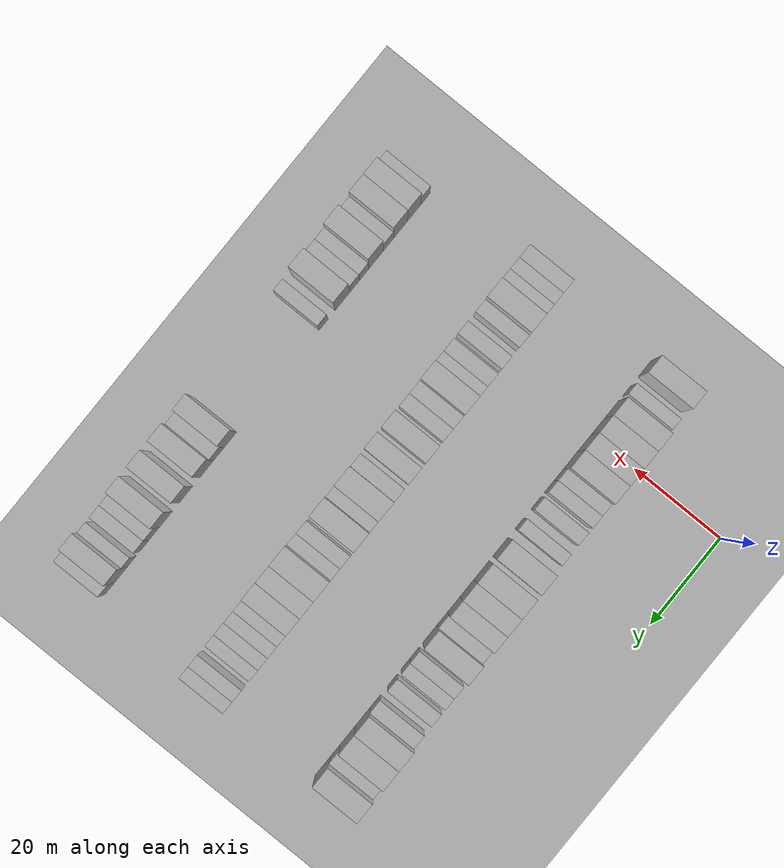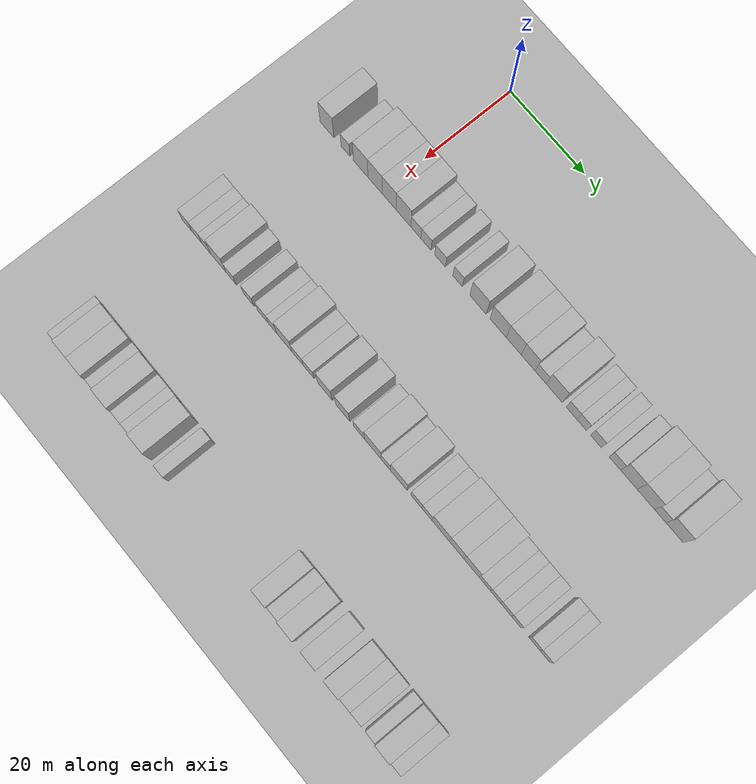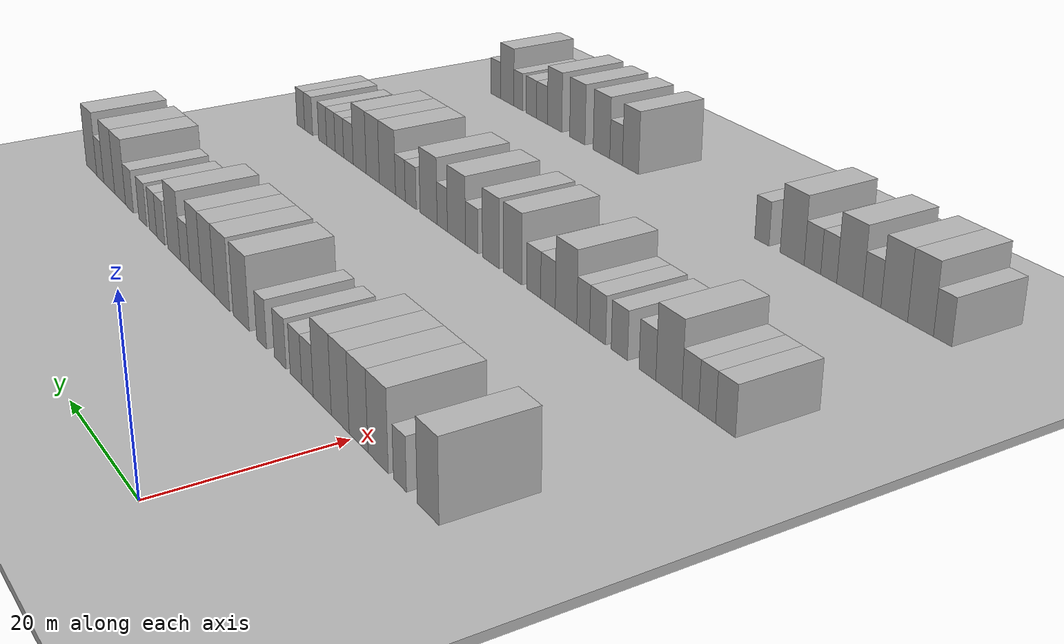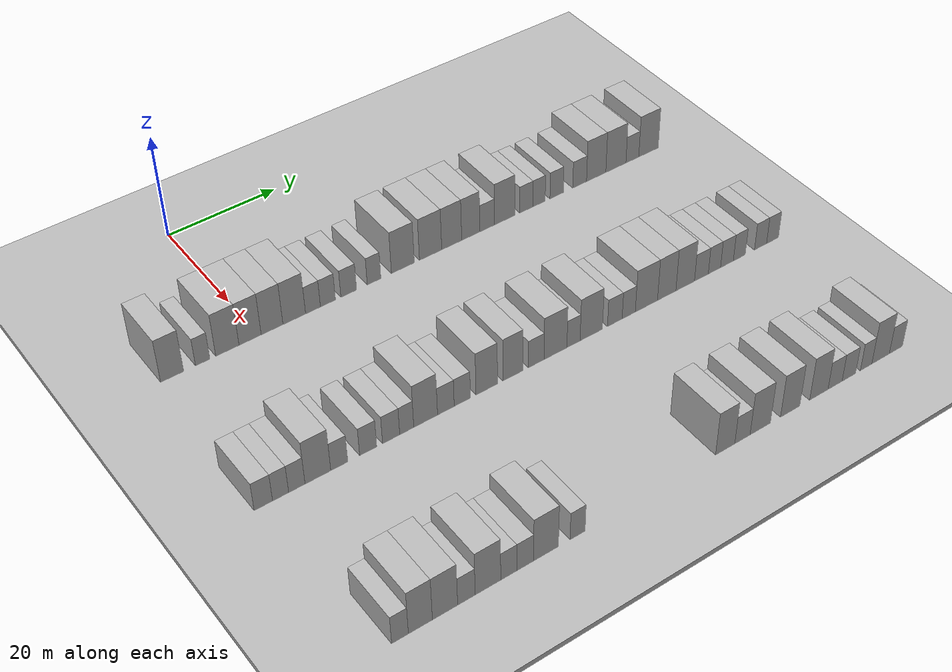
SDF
<sdf version="1.6">
 <world name="default">
  <include><name>ground_plane_1</name><uri>model://HANNAS_ground_plane</uri></include>
  <include>
   <name>ground_plane_2</name>
   <uri>model://HANNAS_ground_plane</uri>
   <pose>100 0 0  0 0 0</pose>
  </include>
  <model name="building_108">
   <static>1</static>
   <pose>25.0000 -15.1009 0 0.000000 0.000000 0.000000</pose>
   <link name="link">
    <pose>0 0 4.50 0 0 0</pose>
    <collision name="collision"><geometry><box><size>10.0000 3.8706 9.0000</size></box></geometry></collision>
    <visual name="visual">
     <cast_shadows>0</cast_shadows>
     <geometry><box><size>10.0000 3.8706 9.0000</size></box></geometry>
     <material>
      <script>
       <uri>model://HANNAS_wall/materials/scripts</uri>
       <uri>model://HANNAS_wall/materials/textures</uri>
       <name>vrc/HANNAS_wall</name>
      </script>
     </material>
    </visual>
   </link>
  </model>
  <model name="building_109">
   <static>1</static>
   <pose>25.0000 -9.9366 0 0.000000 0.000000 0.000000</pose>
   <link name="link">
    <pose>0 0 3.00 0 0 0</pose>
    <collision name="collision"><geometry><box><size>10.0000 2.4580 6.0000</size></box></geometry></collision>
    <visual name="visual">
     <cast_shadows>0</cast_shadows>
     <geometry><box><size>10.0000 2.4580 6.0000</size></box></geometry>
     <material>
      <script>
       <uri>model://HANNAS_wall/materials/scripts</uri>
       <uri>model://HANNAS_wall/materials/textures</uri>
       <name>vrc/HANNAS_wall</name>
      </script>
     </material>
    </visual>
   </link>
  </model>
  <model name="building_110">
   <static>1</static>
   <pose>25.0000 -5.6928 0 0.000000 0.000000 0.000000</pose>
   <link name="link">
    <pose>0 0 4.50 0 0 0</pose>
    <collision name="collision"><geometry><box><size>10.0000 4.0297 9.0000</size></box></geometry></collision>
    <visual name="visual">
     <cast_shadows>0</cast_shadows>
     <geometry><box><size>10.0000 4.0297 9.0000</size></box></geometry>
     <material>
      <script>
       <uri>model://HANNAS_wall/materials/scripts</uri>
       <uri>model://HANNAS_wall/materials/textures</uri>
       <name>vrc/HANNAS_wall</name>
      </script>
     </material>
    </visual>
   </link>
  </model>
  <model name="building_111">
   <static>1</static>
   <pose>25.0000 -1.7312 0 0.000000 0.000000 0.000000</pose>
   <link name="link">
    <pose>0 0 4.50 0 0 0</pose>
    <collision name="collision"><geometry><box><size>10.0000 3.8934 9.0000</size></box></geometry></collision>
    <visual name="visual">
     <cast_shadows>0</cast_shadows>
     <geometry><box><size>10.0000 3.8934 9.0000</size></box></geometry>
     <material>
      <script>
       <uri>model://HANNAS_wall/materials/scripts</uri>
       <uri>model://HANNAS_wall/materials/textures</uri>
       <name>vrc/HANNAS_wall</name>
      </script>
     </material>
    </visual>
   </link>
  </model>
  <model name="building_112">
   <static>1</static>
   <pose>25.0000 2.1440 0 0.000000 0.000000 0.000000</pose>
   <link name="link">
    <pose>0 0 4.50 0 0 0</pose>
    <collision name="collision"><geometry><box><size>10.0000 3.8571 9.0000</size></box></geometry></collision>
    <visual name="visual">
     <cast_shadows>0</cast_shadows>
     <geometry><box><size>10.0000 3.8571 9.0000</size></box></geometry>
     <material>
      <script>
       <uri>model://HANNAS_wall/materials/scripts</uri>
       <uri>model://HANNAS_wall/materials/textures</uri>
       <name>vrc/HANNAS_wall</name>
      </script>
     </material>
    </visual>
   </link>
  </model>
  <model name="building_113">
   <static>1</static>
   <pose>25.0000 6.1071 0 0.000000 0.000000 0.000000</pose>
   <link name="link">
    <pose>0 0 4.50 0 0 0</pose>
    <collision name="collision"><geometry><box><size>10.0000 4.0690 9.0000</size></box></geometry></collision>
    <visual name="visual">
     <cast_shadows>0</cast_shadows>
     <geometry><box><size>10.0000 4.0690 9.0000</size></box></geometry>
     <material>
      <script>
       <uri>model://HANNAS_wall/materials/scripts</uri>
       <uri>model://HANNAS_wall/materials/textures</uri>
       <name>vrc/HANNAS_wall</name>
      </script>
     </material>
    </visual>
   </link>
  </model>
  <model name="building_114">
   <static>1</static>
   <pose>25.0000 9.4922 0 0.000000 0.000000 0.000000</pose>
   <link name="link">
    <pose>0 0 3.00 0 0 0</pose>
    <collision name="collision"><geometry><box><size>10.0000 2.7012 6.0000</size></box></geometry></collision>
    <visual name="visual">
     <cast_shadows>0</cast_shadows>
     <geometry><box><size>10.0000 2.7012 6.0000</size></box></geometry>
     <material>
      <script>
       <uri>model://HANNAS_wall/materials/scripts</uri>
       <uri>model://HANNAS_wall/materials/textures</uri>
       <name>vrc/HANNAS_wall</name>
      </script>
     </material>
    </visual>
   </link>
  </model>
  <model name="building_115">
   <static>1</static>
   <pose>25.0000 12.2214 0 0.000000 0.000000 0.000000</pose>
   <link name="link">
    <pose>0 0 3.00 0 0 0</pose>
    <collision name="collision"><geometry><box><size>10.0000 2.7573 6.0000</size></box></geometry></collision>
    <visual name="visual">
     <cast_shadows>0</cast_shadows>
     <geometry><box><size>10.0000 2.7573 6.0000</size></box></geometry>
     <material>
      <script>
       <uri>model://HANNAS_wall/materials/scripts</uri>
       <uri>model://HANNAS_wall/materials/textures</uri>
       <name>vrc/HANNAS_wall</name>
      </script>
     </material>
    </visual>
   </link>
  </model>
  <model name="building_116">
   <static>1</static>
   <pose>25.0000 16.0547 0 0.000000 0.000000 0.000000</pose>
   <link name="link">
    <pose>0 0 3.00 0 0 0</pose>
    <collision name="collision"><geometry><box><size>10.0000 2.9092 6.0000</size></box></geometry></collision>
    <visual name="visual">
     <cast_shadows>0</cast_shadows>
     <geometry><box><size>10.0000 2.9092 6.0000</size></box></geometry>
     <material>
      <script>
       <uri>model://HANNAS_wall/materials/scripts</uri>
       <uri>model://HANNAS_wall/materials/textures</uri>
       <name>vrc/HANNAS_wall</name>
      </script>
     </material>
    </visual>
   </link>
  </model>
  <model name="building_117">
   <static>1</static>
   <pose>25.0000 20.7927 0 0.000000 0.000000 0.000000</pose>
   <link name="link">
    <pose>0 0 3.00 0 0 0</pose>
    <collision name="collision"><geometry><box><size>10.0000 2.5668 6.0000</size></box></geometry></collision>
    <visual name="visual">
     <cast_shadows>0</cast_shadows>
     <geometry><box><size>10.0000 2.5668 6.0000</size></box></geometry>
     <material>
      <script>
       <uri>model://HANNAS_wall/materials/scripts</uri>
       <uri>model://HANNAS_wall/materials/textures</uri>
       <name>vrc/HANNAS_wall</name>
      </script>
     </material>
    </visual>
   </link>
  </model>
  <model name="building_118">
   <static>1</static>
   <pose>25.0000 26.2686 0 0.000000 0.000000 0.000000</pose>
   <link name="link">
    <pose>0 0 4.50 0 0 0</pose>
    <collision name="collision"><geometry><box><size>10.0000 4.3850 9.0000</size></box></geometry></collision>
    <visual name="visual">
     <cast_shadows>0</cast_shadows>
     <geometry><box><size>10.0000 4.3850 9.0000</size></box></geometry>
     <material>
      <script>
       <uri>model://HANNAS_wall/materials/scripts</uri>
       <uri>model://HANNAS_wall/materials/textures</uri>
       <name>vrc/HANNAS_wall</name>
      </script>
     </material>
    </visual>
   </link>
  </model>
  <model name="building_119">
   <static>1</static>
   <pose>25.0000 31.6333 0 0.000000 0.000000 0.000000</pose>
   <link name="link">
    <pose>0 0 4.50 0 0 0</pose>
    <collision name="collision"><geometry><box><size>10.0000 4.3445 9.0000</size></box></geometry></collision>
    <visual name="visual">
     <cast_shadows>0</cast_shadows>
     <geometry><box><size>10.0000 4.3445 9.0000</size></box></geometry>
     <material>
      <script>
       <uri>model://HANNAS_wall/materials/scripts</uri>
       <uri>model://HANNAS_wall/materials/textures</uri>
       <name>vrc/HANNAS_wall</name>
      </script>
     </material>
    </visual>
   </link>
  </model>
  <model name="building_120">
   <static>1</static>
   <pose>25.0000 35.7779 0 0.000000 0.000000 0.000000</pose>
   <link name="link">
    <pose>0 0 4.50 0 0 0</pose>
    <collision name="collision"><geometry><box><size>10.0000 3.9447 9.0000</size></box></geometry></collision>
    <visual name="visual">
     <cast_shadows>0</cast_shadows>
     <geometry><box><size>10.0000 3.9447 9.0000</size></box></geometry>
     <material>
      <script>
       <uri>model://HANNAS_wall/materials/scripts</uri>
       <uri>model://HANNAS_wall/materials/textures</uri>
       <name>vrc/HANNAS_wall</name>
      </script>
     </material>
    </visual>
   </link>
  </model>
  <model name="building_121">
   <static>1</static>
   <pose>25.0000 39.5737 0 0.000000 0.000000 0.000000</pose>
   <link name="link">
    <pose>0 0 4.50 0 0 0</pose>
    <collision name="collision"><geometry><box><size>10.0000 3.6469 9.0000</size></box></geometry></collision>
    <visual name="visual">
     <cast_shadows>0</cast_shadows>
     <geometry><box><size>10.0000 3.6469 9.0000</size></box></geometry>
     <material>
      <script>
       <uri>model://HANNAS_wall/materials/scripts</uri>
       <uri>model://HANNAS_wall/materials/textures</uri>
       <name>vrc/HANNAS_wall</name>
      </script>
     </material>
    </visual>
   </link>
  </model>
  <model name="building_122">
   <static>1</static>
   <pose>25.0000 42.8624 0 0.000000 0.000000 0.000000</pose>
   <link name="link">
    <pose>0 0 3.00 0 0 0</pose>
    <collision name="collision"><geometry><box><size>10.0000 2.9305 6.0000</size></box></geometry></collision>
    <visual name="visual">
     <cast_shadows>0</cast_shadows>
     <geometry><box><size>10.0000 2.9305 6.0000</size></box></geometry>
     <material>
      <script>
       <uri>model://HANNAS_wall/materials/scripts</uri>
       <uri>model://HANNAS_wall/materials/textures</uri>
       <name>vrc/HANNAS_wall</name>
      </script>
     </material>
    </visual>
   </link>
  </model>
  <model name="building_123">
   <static>1</static>
   <pose>25.0000 46.4204 0 0.000000 0.000000 0.000000</pose>
   <link name="link">
    <pose>0 0 4.50 0 0 0</pose>
    <collision name="collision"><geometry><box><size>10.0000 4.1855 9.0000</size></box></geometry></collision>
    <visual name="visual">
     <cast_shadows>0</cast_shadows>
     <geometry><box><size>10.0000 4.1855 9.0000</size></box></geometry>
     <material>
      <script>
       <uri>model://HANNAS_wall/materials/scripts</uri>
       <uri>model://HANNAS_wall/materials/textures</uri>
       <name>vrc/HANNAS_wall</name>
      </script>
     </material>
    </visual>
   </link>
  </model>
  <model name="building_124">
   <static>1</static>
   <pose>25.0000 50.8797 0 0.000000 0.000000 0.000000</pose>
   <link name="link">
    <pose>0 0 3.00 0 0 0</pose>
    <collision name="collision"><geometry><box><size>10.0000 2.7330 6.0000</size></box></geometry></collision>
    <visual name="visual">
     <cast_shadows>0</cast_shadows>
     <geometry><box><size>10.0000 2.7330 6.0000</size></box></geometry>
     <material>
      <script>
       <uri>model://HANNAS_wall/materials/scripts</uri>
       <uri>model://HANNAS_wall/materials/textures</uri>
       <name>vrc/HANNAS_wall</name>
      </script>
     </material>
    </visual>
   </link>
  </model>
  <model name="building_125">
   <static>1</static>
   <pose>25.0000 53.5126 0 0.000000 0.000000 0.000000</pose>
   <link name="link">
    <pose>0 0 3.00 0 0 0</pose>
    <collision name="collision"><geometry><box><size>10.0000 2.5329 6.0000</size></box></geometry></collision>
    <visual name="visual">
     <cast_shadows>0</cast_shadows>
     <geometry><box><size>10.0000 2.5329 6.0000</size></box></geometry>
     <material>
      <script>
       <uri>model://HANNAS_wall/materials/scripts</uri>
       <uri>model://HANNAS_wall/materials/textures</uri>
       <name>vrc/HANNAS_wall</name>
      </script>
     </material>
    </visual>
   </link>
  </model>
  <model name="building_126">
   <static>1</static>
   <pose>25.0000 57.1912 0 0.000000 0.000000 0.000000</pose>
   <link name="link">
    <pose>0 0 3.00 0 0 0</pose>
    <collision name="collision"><geometry><box><size>10.0000 2.8243 6.0000</size></box></geometry></collision>
    <visual name="visual">
     <cast_shadows>0</cast_shadows>
     <geometry><box><size>10.0000 2.8243 6.0000</size></box></geometry>
     <material>
      <script>
       <uri>model://HANNAS_wall/materials/scripts</uri>
       <uri>model://HANNAS_wall/materials/textures</uri>
       <name>vrc/HANNAS_wall</name>
      </script>
     </material>
    </visual>
   </link>
  </model>
  <model name="building_127">
   <static>1</static>
   <pose>25.0000 62.0776 0 0.000000 0.000000 0.000000</pose>
   <link name="link">
    <pose>0 0 3.00 0 0 0</pose>
    <collision name="collision"><geometry><box><size>10.0000 2.9485 6.0000</size></box></geometry></collision>
    <visual name="visual">
     <cast_shadows>0</cast_shadows>
     <geometry><box><size>10.0000 2.9485 6.0000</size></box></geometry>
     <material>
      <script>
       <uri>model://HANNAS_wall/materials/scripts</uri>
       <uri>model://HANNAS_wall/materials/textures</uri>
       <name>vrc/HANNAS_wall</name>
      </script>
     </material>
    </visual>
   </link>
  </model>
  <model name="building_128">
   <static>1</static>
   <pose>25.0000 65.6393 0 0.000000 0.000000 0.000000</pose>
   <link name="link">
    <pose>0 0 4.50 0 0 0</pose>
    <collision name="collision"><geometry><box><size>10.0000 4.1749 9.0000</size></box></geometry></collision>
    <visual name="visual">
     <cast_shadows>0</cast_shadows>
     <geometry><box><size>10.0000 4.1749 9.0000</size></box></geometry>
     <material>
      <script>
       <uri>model://HANNAS_wall/materials/scripts</uri>
       <uri>model://HANNAS_wall/materials/textures</uri>
       <name>vrc/HANNAS_wall</name>
      </script>
     </material>
    </visual>
   </link>
  </model>
  <model name="building_129">
   <static>1</static>
   <pose>25.0000 69.9250 0 0.000000 0.000000 0.000000</pose>
   <link name="link">
    <pose>0 0 4.50 0 0 0</pose>
    <collision name="collision"><geometry><box><size>10.0000 4.3966 9.0000</size></box></geometry></collision>
    <visual name="visual">
     <cast_shadows>0</cast_shadows>
     <geometry><box><size>10.0000 4.3966 9.0000</size></box></geometry>
     <material>
      <script>
       <uri>model://HANNAS_wall/materials/scripts</uri>
       <uri>model://HANNAS_wall/materials/textures</uri>
       <name>vrc/HANNAS_wall</name>
      </script>
     </material>
    </visual>
   </link>
  </model>
  <model name="building_130">
   <static>1</static>
   <pose>25.0000 73.5463 0 0.000000 0.000000 0.000000</pose>
   <link name="link">
    <pose>0 0 3.00 0 0 0</pose>
    <collision name="collision"><geometry><box><size>10.0000 2.8460 6.0000</size></box></geometry></collision>
    <visual name="visual">
     <cast_shadows>0</cast_shadows>
     <geometry><box><size>10.0000 2.8460 6.0000</size></box></geometry>
     <material>
      <script>
       <uri>model://HANNAS_wall/materials/scripts</uri>
       <uri>model://HANNAS_wall/materials/textures</uri>
       <name>vrc/HANNAS_wall</name>
      </script>
     </material>
    </visual>
   </link>
  </model>
  <model name="building_131">
   <static>1</static>
   <pose>25.0000 77.1351 0 0.000000 0.000000 0.000000</pose>
   <link name="link">
    <pose>0 0 4.50 0 0 0</pose>
    <collision name="collision"><geometry><box><size>10.0000 4.3316 9.0000</size></box></geometry></collision>
    <visual name="visual">
     <cast_shadows>0</cast_shadows>
     <geometry><box><size>10.0000 4.3316 9.0000</size></box></geometry>
     <material>
      <script>
       <uri>model://HANNAS_wall/materials/scripts</uri>
       <uri>model://HANNAS_wall/materials/textures</uri>
       <name>vrc/HANNAS_wall</name>
      </script>
     </material>
    </visual>
   </link>
  </model>
  <model name="building_337">
   <static>1</static>
   <pose>55.0000 -16.8070 0 0.000000 0.000000 0.000000</pose>
   <link name="link">
    <pose>0 0 3.00 0 0 0</pose>
    <collision name="collision"><geometry><box><size>10.0000 2.9560 6.0000</size></box></geometry></collision>
    <visual name="visual">
     <cast_shadows>0</cast_shadows>
     <geometry><box><size>10.0000 2.9560 6.0000</size></box></geometry>
     <material>
      <script>
       <uri>model://HANNAS_wall/materials/scripts</uri>
       <uri>model://HANNAS_wall/materials/textures</uri>
       <name>vrc/HANNAS_wall</name>
      </script>
     </material>
    </visual>
   </link>
  </model>
  <model name="building_338">
   <static>1</static>
   <pose>55.0000 -14.0329 0 0.000000 0.000000 0.000000</pose>
   <link name="link">
    <pose>0 0 3.00 0 0 0</pose>
    <collision name="collision"><geometry><box><size>10.0000 2.5920 6.0000</size></box></geometry></collision>
    <visual name="visual">
     <cast_shadows>0</cast_shadows>
     <geometry><box><size>10.0000 2.5920 6.0000</size></box></geometry>
     <material>
      <script>
       <uri>model://HANNAS_wall/materials/scripts</uri>
       <uri>model://HANNAS_wall/materials/textures</uri>
       <name>vrc/HANNAS_wall</name>
      </script>
     </material>
    </visual>
   </link>
  </model>
  <model name="building_339">
   <static>1</static>
   <pose>55.0000 -11.4016 0 0.000000 0.000000 0.000000</pose>
   <link name="link">
    <pose>0 0 3.00 0 0 0</pose>
    <collision name="collision"><geometry><box><size>10.0000 2.6707 6.0000</size></box></geometry></collision>
    <visual name="visual">
     <cast_shadows>0</cast_shadows>
     <geometry><box><size>10.0000 2.6707 6.0000</size></box></geometry>
     <material>
      <script>
       <uri>model://HANNAS_wall/materials/scripts</uri>
       <uri>model://HANNAS_wall/materials/textures</uri>
       <name>vrc/HANNAS_wall</name>
      </script>
     </material>
    </visual>
   </link>
  </model>
  <model name="building_340">
   <static>1</static>
   <pose>55.0000 -7.9428 0 0.000000 0.000000 0.000000</pose>
   <link name="link">
    <pose>0 0 4.50 0 0 0</pose>
    <collision name="collision"><geometry><box><size>10.0000 4.2467 9.0000</size></box></geometry></collision>
    <visual name="visual">
     <cast_shadows>0</cast_shadows>
     <geometry><box><size>10.0000 4.2467 9.0000</size></box></geometry>
     <material>
      <script>
       <uri>model://HANNAS_wall/materials/scripts</uri>
       <uri>model://HANNAS_wall/materials/textures</uri>
       <name>vrc/HANNAS_wall</name>
      </script>
     </material>
    </visual>
   </link>
  </model>
  <model name="building_341">
   <static>1</static>
   <pose>55.0000 -4.4014 0 0.000000 0.000000 0.000000</pose>
   <link name="link">
    <pose>0 0 3.00 0 0 0</pose>
    <collision name="collision"><geometry><box><size>10.0000 2.8362 6.0000</size></box></geometry></collision>
    <visual name="visual">
     <cast_shadows>0</cast_shadows>
     <geometry><box><size>10.0000 2.8362 6.0000</size></box></geometry>
     <material>
      <script>
       <uri>model://HANNAS_wall/materials/scripts</uri>
       <uri>model://HANNAS_wall/materials/textures</uri>
       <name>vrc/HANNAS_wall</name>
      </script>
     </material>
    </visual>
   </link>
  </model>
  <model name="building_342">
   <static>1</static>
   <pose>55.0000 0.4653 0 0.000000 0.000000 0.000000</pose>
   <link name="link">
    <pose>0 0 3.00 0 0 0</pose>
    <collision name="collision"><geometry><box><size>10.0000 2.8972 6.0000</size></box></geometry></collision>
    <visual name="visual">
     <cast_shadows>0</cast_shadows>
     <geometry><box><size>10.0000 2.8972 6.0000</size></box></geometry>
     <material>
      <script>
       <uri>model://HANNAS_wall/materials/scripts</uri>
       <uri>model://HANNAS_wall/materials/textures</uri>
       <name>vrc/HANNAS_wall</name>
      </script>
     </material>
    </visual>
   </link>
  </model>
  <model name="building_343">
   <static>1</static>
   <pose>55.0000 4.3917 0 0.000000 0.000000 0.000000</pose>
   <link name="link">
    <pose>0 0 3.00 0 0 0</pose>
    <collision name="collision"><geometry><box><size>10.0000 2.9557 6.0000</size></box></geometry></collision>
    <visual name="visual">
     <cast_shadows>0</cast_shadows>
     <geometry><box><size>10.0000 2.9557 6.0000</size></box></geometry>
     <material>
      <script>
       <uri>model://HANNAS_wall/materials/scripts</uri>
       <uri>model://HANNAS_wall/materials/textures</uri>
       <name>vrc/HANNAS_wall</name>
      </script>
     </material>
    </visual>
   </link>
  </model>
  <model name="building_344">
   <static>1</static>
   <pose>55.0000 7.0900 0 0.000000 0.000000 0.000000</pose>
   <link name="link">
    <pose>0 0 3.00 0 0 0</pose>
    <collision name="collision"><geometry><box><size>10.0000 2.4409 6.0000</size></box></geometry></collision>
    <visual name="visual">
     <cast_shadows>0</cast_shadows>
     <geometry><box><size>10.0000 2.4409 6.0000</size></box></geometry>
     <material>
      <script>
       <uri>model://HANNAS_wall/materials/scripts</uri>
       <uri>model://HANNAS_wall/materials/textures</uri>
       <name>vrc/HANNAS_wall</name>
      </script>
     </material>
    </visual>
   </link>
  </model>
  <model name="building_345">
   <static>1</static>
   <pose>55.0000 10.4036 0 0.000000 0.000000 0.000000</pose>
   <link name="link">
    <pose>0 0 4.50 0 0 0</pose>
    <collision name="collision"><geometry><box><size>10.0000 4.1865 9.0000</size></box></geometry></collision>
    <visual name="visual">
     <cast_shadows>0</cast_shadows>
     <geometry><box><size>10.0000 4.1865 9.0000</size></box></geometry>
     <material>
      <script>
       <uri>model://HANNAS_wall/materials/scripts</uri>
       <uri>model://HANNAS_wall/materials/textures</uri>
       <name>vrc/HANNAS_wall</name>
      </script>
     </material>
    </visual>
   </link>
  </model>
  <model name="building_346">
   <static>1</static>
   <pose>55.0000 13.9774 0 0.000000 0.000000 0.000000</pose>
   <link name="link">
    <pose>0 0 3.00 0 0 0</pose>
    <collision name="collision"><geometry><box><size>10.0000 2.9611 6.0000</size></box></geometry></collision>
    <visual name="visual">
     <cast_shadows>0</cast_shadows>
     <geometry><box><size>10.0000 2.9611 6.0000</size></box></geometry>
     <material>
      <script>
       <uri>model://HANNAS_wall/materials/scripts</uri>
       <uri>model://HANNAS_wall/materials/textures</uri>
       <name>vrc/HANNAS_wall</name>
      </script>
     </material>
    </visual>
   </link>
  </model>
  <model name="building_347">
   <static>1</static>
   <pose>55.0000 16.9196 0 0.000000 0.000000 0.000000</pose>
   <link name="link">
    <pose>0 0 3.00 0 0 0</pose>
    <collision name="collision"><geometry><box><size>10.0000 2.9232 6.0000</size></box></geometry></collision>
    <visual name="visual">
     <cast_shadows>0</cast_shadows>
     <geometry><box><size>10.0000 2.9232 6.0000</size></box></geometry>
     <material>
      <script>
       <uri>model://HANNAS_wall/materials/scripts</uri>
       <uri>model://HANNAS_wall/materials/textures</uri>
       <name>vrc/HANNAS_wall</name>
      </script>
     </material>
    </visual>
   </link>
  </model>
  <model name="building_348">
   <static>1</static>
   <pose>55.0000 21.3494 0 0.000000 0.000000 0.000000</pose>
   <link name="link">
    <pose>0 0 4.50 0 0 0</pose>
    <collision name="collision"><geometry><box><size>10.0000 3.9364 9.0000</size></box></geometry></collision>
    <visual name="visual">
     <cast_shadows>0</cast_shadows>
     <geometry><box><size>10.0000 3.9364 9.0000</size></box></geometry>
     <material>
      <script>
       <uri>model://HANNAS_wall/materials/scripts</uri>
       <uri>model://HANNAS_wall/materials/textures</uri>
       <name>vrc/HANNAS_wall</name>
      </script>
     </material>
    </visual>
   </link>
  </model>
  <model name="building_349">
   <static>1</static>
   <pose>55.0000 26.1834 0 0.000000 0.000000 0.000000</pose>
   <link name="link">
    <pose>0 0 4.50 0 0 0</pose>
    <collision name="collision"><geometry><box><size>10.0000 3.7317 9.0000</size></box></geometry></collision>
    <visual name="visual">
     <cast_shadows>0</cast_shadows>
     <geometry><box><size>10.0000 3.7317 9.0000</size></box></geometry>
     <material>
      <script>
       <uri>model://HANNAS_wall/materials/scripts</uri>
       <uri>model://HANNAS_wall/materials/textures</uri>
       <name>vrc/HANNAS_wall</name>
      </script>
     </material>
    </visual>
   </link>
  </model>
  <model name="building_350">
   <static>1</static>
   <pose>55.0000 30.5182 0 0.000000 0.000000 0.000000</pose>
   <link name="link">
    <pose>0 0 3.00 0 0 0</pose>
    <collision name="collision"><geometry><box><size>10.0000 2.9378 6.0000</size></box></geometry></collision>
    <visual name="visual">
     <cast_shadows>0</cast_shadows>
     <geometry><box><size>10.0000 2.9378 6.0000</size></box></geometry>
     <material>
      <script>
       <uri>model://HANNAS_wall/materials/scripts</uri>
       <uri>model://HANNAS_wall/materials/textures</uri>
       <name>vrc/HANNAS_wall</name>
      </script>
     </material>
    </visual>
   </link>
  </model>
  <model name="building_351">
   <static>1</static>
   <pose>55.0000 34.1673 0 0.000000 0.000000 0.000000</pose>
   <link name="link">
    <pose>0 0 4.50 0 0 0</pose>
    <collision name="collision"><geometry><box><size>10.0000 4.3604 9.0000</size></box></geometry></collision>
    <visual name="visual">
     <cast_shadows>0</cast_shadows>
     <geometry><box><size>10.0000 4.3604 9.0000</size></box></geometry>
     <material>
      <script>
       <uri>model://HANNAS_wall/materials/scripts</uri>
       <uri>model://HANNAS_wall/materials/textures</uri>
       <name>vrc/HANNAS_wall</name>
      </script>
     </material>
    </visual>
   </link>
  </model>
  <model name="building_352">
   <static>1</static>
   <pose>55.0000 37.6154 0 0.000000 0.000000 0.000000</pose>
   <link name="link">
    <pose>0 0 3.00 0 0 0</pose>
    <collision name="collision"><geometry><box><size>10.0000 2.5358 6.0000</size></box></geometry></collision>
    <visual name="visual">
     <cast_shadows>0</cast_shadows>
     <geometry><box><size>10.0000 2.5358 6.0000</size></box></geometry>
     <material>
      <script>
       <uri>model://HANNAS_wall/materials/scripts</uri>
       <uri>model://HANNAS_wall/materials/textures</uri>
       <name>vrc/HANNAS_wall</name>
      </script>
     </material>
    </visual>
   </link>
  </model>
  <model name="building_353">
   <static>1</static>
   <pose>55.0000 41.0611 0 0.000000 0.000000 0.000000</pose>
   <link name="link">
    <pose>0 0 4.50 0 0 0</pose>
    <collision name="collision"><geometry><box><size>10.0000 4.3557 9.0000</size></box></geometry></collision>
    <visual name="visual">
     <cast_shadows>0</cast_shadows>
     <geometry><box><size>10.0000 4.3557 9.0000</size></box></geometry>
     <material>
      <script>
       <uri>model://HANNAS_wall/materials/scripts</uri>
       <uri>model://HANNAS_wall/materials/textures</uri>
       <name>vrc/HANNAS_wall</name>
      </script>
     </material>
    </visual>
   </link>
  </model>
  <model name="building_354">
   <static>1</static>
   <pose>55.0000 45.6877 0 0.000000 0.000000 0.000000</pose>
   <link name="link">
    <pose>0 0 3.00 0 0 0</pose>
    <collision name="collision"><geometry><box><size>10.0000 2.8975 6.0000</size></box></geometry></collision>
    <visual name="visual">
     <cast_shadows>0</cast_shadows>
     <geometry><box><size>10.0000 2.8975 6.0000</size></box></geometry>
     <material>
      <script>
       <uri>model://HANNAS_wall/materials/scripts</uri>
       <uri>model://HANNAS_wall/materials/textures</uri>
       <name>vrc/HANNAS_wall</name>
      </script>
     </material>
    </visual>
   </link>
  </model>
  <model name="building_355">
   <static>1</static>
   <pose>55.0000 48.4525 0 0.000000 0.000000 0.000000</pose>
   <link name="link">
    <pose>0 0 3.00 0 0 0</pose>
    <collision name="collision"><geometry><box><size>10.0000 2.6320 6.0000</size></box></geometry></collision>
    <visual name="visual">
     <cast_shadows>0</cast_shadows>
     <geometry><box><size>10.0000 2.6320 6.0000</size></box></geometry>
     <material>
      <script>
       <uri>model://HANNAS_wall/materials/scripts</uri>
       <uri>model://HANNAS_wall/materials/textures</uri>
       <name>vrc/HANNAS_wall</name>
      </script>
     </material>
    </visual>
   </link>
  </model>
  <model name="building_356">
   <static>1</static>
   <pose>55.0000 52.0108 0 0.000000 0.000000 0.000000</pose>
   <link name="link">
    <pose>0 0 4.50 0 0 0</pose>
    <collision name="collision"><geometry><box><size>10.0000 4.4846 9.0000</size></box></geometry></collision>
    <visual name="visual">
     <cast_shadows>0</cast_shadows>
     <geometry><box><size>10.0000 4.4846 9.0000</size></box></geometry>
     <material>
      <script>
       <uri>model://HANNAS_wall/materials/scripts</uri>
       <uri>model://HANNAS_wall/materials/textures</uri>
       <name>vrc/HANNAS_wall</name>
      </script>
     </material>
    </visual>
   </link>
  </model>
  <model name="building_357">
   <static>1</static>
   <pose>55.0000 56.1361 0 0.000000 0.000000 0.000000</pose>
   <link name="link">
    <pose>0 0 4.50 0 0 0</pose>
    <collision name="collision"><geometry><box><size>10.0000 3.7659 9.0000</size></box></geometry></collision>
    <visual name="visual">
     <cast_shadows>0</cast_shadows>
     <geometry><box><size>10.0000 3.7659 9.0000</size></box></geometry>
     <material>
      <script>
       <uri>model://HANNAS_wall/materials/scripts</uri>
       <uri>model://HANNAS_wall/materials/textures</uri>
       <name>vrc/HANNAS_wall</name>
      </script>
     </material>
    </visual>
   </link>
  </model>
  <model name="building_358">
   <static>1</static>
   <pose>55.0000 59.9453 0 0.000000 0.000000 0.000000</pose>
   <link name="link">
    <pose>0 0 4.50 0 0 0</pose>
    <collision name="collision"><geometry><box><size>10.0000 3.8526 9.0000</size></box></geometry></collision>
    <visual name="visual">
     <cast_shadows>0</cast_shadows>
     <geometry><box><size>10.0000 3.8526 9.0000</size></box></geometry>
     <material>
      <script>
       <uri>model://HANNAS_wall/materials/scripts</uri>
       <uri>model://HANNAS_wall/materials/textures</uri>
       <name>vrc/HANNAS_wall</name>
      </script>
     </material>
    </visual>
   </link>
  </model>
  <model name="building_359">
   <static>1</static>
   <pose>55.0000 63.3178 0 0.000000 0.000000 0.000000</pose>
   <link name="link">
    <pose>0 0 3.00 0 0 0</pose>
    <collision name="collision"><geometry><box><size>10.0000 2.8923 6.0000</size></box></geometry></collision>
    <visual name="visual">
     <cast_shadows>0</cast_shadows>
     <geometry><box><size>10.0000 2.8923 6.0000</size></box></geometry>
     <material>
      <script>
       <uri>model://HANNAS_wall/materials/scripts</uri>
       <uri>model://HANNAS_wall/materials/textures</uri>
       <name>vrc/HANNAS_wall</name>
      </script>
     </material>
    </visual>
   </link>
  </model>
  <model name="building_360">
   <static>1</static>
   <pose>55.0000 66.0631 0 0.000000 0.000000 0.000000</pose>
   <link name="link">
    <pose>0 0 3.00 0 0 0</pose>
    <collision name="collision"><geometry><box><size>10.0000 2.5984 6.0000</size></box></geometry></collision>
    <visual name="visual">
     <cast_shadows>0</cast_shadows>
     <geometry><box><size>10.0000 2.5984 6.0000</size></box></geometry>
     <material>
      <script>
       <uri>model://HANNAS_wall/materials/scripts</uri>
       <uri>model://HANNAS_wall/materials/textures</uri>
       <name>vrc/HANNAS_wall</name>
      </script>
     </material>
    </visual>
   </link>
  </model>
  <model name="building_361">
   <static>1</static>
   <pose>55.0000 68.7220 0 0.000000 0.000000 0.000000</pose>
   <link name="link">
    <pose>0 0 3.00 0 0 0</pose>
    <collision name="collision"><geometry><box><size>10.0000 2.7192 6.0000</size></box></geometry></collision>
    <visual name="visual">
     <cast_shadows>0</cast_shadows>
     <geometry><box><size>10.0000 2.7192 6.0000</size></box></geometry>
     <material>
      <script>
       <uri>model://HANNAS_wall/materials/scripts</uri>
       <uri>model://HANNAS_wall/materials/textures</uri>
       <name>vrc/HANNAS_wall</name>
      </script>
     </material>
    </visual>
   </link>
  </model>
  <model name="building_362">
   <static>1</static>
   <pose>55.0000 71.3568 0 0.000000 0.000000 0.000000</pose>
   <link name="link">
    <pose>0 0 3.00 0 0 0</pose>
    <collision name="collision"><geometry><box><size>10.0000 2.5504 6.0000</size></box></geometry></collision>
    <visual name="visual">
     <cast_shadows>0</cast_shadows>
     <geometry><box><size>10.0000 2.5504 6.0000</size></box></geometry>
     <material>
      <script>
       <uri>model://HANNAS_wall/materials/scripts</uri>
       <uri>model://HANNAS_wall/materials/textures</uri>
       <name>vrc/HANNAS_wall</name>
      </script>
     </material>
    </visual>
   </link>
  </model>
  <model name="building_363">
   <static>1</static>
   <pose>55.0000 75.9538 0 0.000000 0.000000 0.000000</pose>
   <link name="link">
    <pose>0 0 3.00 0 0 0</pose>
    <collision name="collision"><geometry><box><size>10.0000 2.6436 6.0000</size></box></geometry></collision>
    <visual name="visual">
     <cast_shadows>0</cast_shadows>
     <geometry><box><size>10.0000 2.6436 6.0000</size></box></geometry>
     <material>
      <script>
       <uri>model://HANNAS_wall/materials/scripts</uri>
       <uri>model://HANNAS_wall/materials/textures</uri>
       <name>vrc/HANNAS_wall</name>
      </script>
     </material>
    </visual>
   </link>
  </model>
  <model name="building_364">
   <static>1</static>
   <pose>55.0000 78.5729 0 0.000000 0.000000 0.000000</pose>
   <link name="link">
    <pose>0 0 3.00 0 0 0</pose>
    <collision name="collision"><geometry><box><size>10.0000 2.5948 6.0000</size></box></geometry></collision>
    <visual name="visual">
     <cast_shadows>0</cast_shadows>
     <geometry><box><size>10.0000 2.5948 6.0000</size></box></geometry>
     <material>
      <script>
       <uri>model://HANNAS_wall/materials/scripts</uri>
       <uri>model://HANNAS_wall/materials/textures</uri>
       <name>vrc/HANNAS_wall</name>
      </script>
     </material>
    </visual>
   </link>
  </model>
  <model name="building_573">
   <static>1</static>
   <pose>85.0000 -13.8797 0 0.000000 0.000000 0.000000</pose>
   <link name="link">
    <pose>0 0 3.00 0 0 0</pose>
    <collision name="collision"><geometry><box><size>10.0000 2.6000 6.0000</size></box></geometry></collision>
    <visual name="visual">
     <cast_shadows>0</cast_shadows>
     <geometry><box><size>10.0000 2.6000 6.0000</size></box></geometry>
     <material>
      <script>
       <uri>model://HANNAS_wall/materials/scripts</uri>
       <uri>model://HANNAS_wall/materials/textures</uri>
       <name>vrc/HANNAS_wall</name>
      </script>
     </material>
    </visual>
   </link>
  </model>
  <model name="building_574">
   <static>1</static>
   <pose>85.0000 -10.6944 0 0.000000 0.000000 0.000000</pose>
   <link name="link">
    <pose>0 0 4.50 0 0 0</pose>
    <collision name="collision"><geometry><box><size>10.0000 3.7707 9.0000</size></box></geometry></collision>
    <visual name="visual">
     <cast_shadows>0</cast_shadows>
     <geometry><box><size>10.0000 3.7707 9.0000</size></box></geometry>
     <material>
      <script>
       <uri>model://HANNAS_wall/materials/scripts</uri>
       <uri>model://HANNAS_wall/materials/textures</uri>
       <name>vrc/HANNAS_wall</name>
      </script>
     </material>
    </visual>
   </link>
  </model>
  <model name="building_575">
   <static>1</static>
   <pose>85.0000 -6.8000 0 0.000000 0.000000 0.000000</pose>
   <link name="link">
    <pose>0 0 4.50 0 0 0</pose>
    <collision name="collision"><geometry><box><size>10.0000 4.0182 9.0000</size></box></geometry></collision>
    <visual name="visual">
     <cast_shadows>0</cast_shadows>
     <geometry><box><size>10.0000 4.0182 9.0000</size></box></geometry>
     <material>
      <script>
       <uri>model://HANNAS_wall/materials/scripts</uri>
       <uri>model://HANNAS_wall/materials/textures</uri>
       <name>vrc/HANNAS_wall</name>
      </script>
     </material>
    </visual>
   </link>
  </model>
  <model name="building_576">
   <static>1</static>
   <pose>85.0000 -3.3782 0 0.000000 0.000000 0.000000</pose>
   <link name="link">
    <pose>0 0 3.00 0 0 0</pose>
    <collision name="collision"><geometry><box><size>10.0000 2.8255 6.0000</size></box></geometry></collision>
    <visual name="visual">
     <cast_shadows>0</cast_shadows>
     <geometry><box><size>10.0000 2.8255 6.0000</size></box></geometry>
     <material>
      <script>
       <uri>model://HANNAS_wall/materials/scripts</uri>
       <uri>model://HANNAS_wall/materials/textures</uri>
       <name>vrc/HANNAS_wall</name>
      </script>
     </material>
    </visual>
   </link>
  </model>
  <model name="building_577">
   <static>1</static>
   <pose>85.0000 0.1258 0 0.000000 0.000000 0.000000</pose>
   <link name="link">
    <pose>0 0 4.50 0 0 0</pose>
    <collision name="collision"><geometry><box><size>10.0000 4.1826 9.0000</size></box></geometry></collision>
    <visual name="visual">
     <cast_shadows>0</cast_shadows>
     <geometry><box><size>10.0000 4.1826 9.0000</size></box></geometry>
     <material>
      <script>
       <uri>model://HANNAS_wall/materials/scripts</uri>
       <uri>model://HANNAS_wall/materials/textures</uri>
       <name>vrc/HANNAS_wall</name>
      </script>
     </material>
    </visual>
   </link>
  </model>
  <model name="building_578">
   <static>1</static>
   <pose>85.0000 3.5448 0 0.000000 0.000000 0.000000</pose>
   <link name="link">
    <pose>0 0 3.00 0 0 0</pose>
    <collision name="collision"><geometry><box><size>10.0000 2.6553 6.0000</size></box></geometry></collision>
    <visual name="visual">
     <cast_shadows>0</cast_shadows>
     <geometry><box><size>10.0000 2.6553 6.0000</size></box></geometry>
     <material>
      <script>
       <uri>model://HANNAS_wall/materials/scripts</uri>
       <uri>model://HANNAS_wall/materials/textures</uri>
       <name>vrc/HANNAS_wall</name>
      </script>
     </material>
    </visual>
   </link>
  </model>
  <model name="building_579">
   <static>1</static>
   <pose>85.0000 6.2719 0 0.000000 0.000000 0.000000</pose>
   <link name="link">
    <pose>0 0 3.00 0 0 0</pose>
    <collision name="collision"><geometry><box><size>10.0000 2.7990 6.0000</size></box></geometry></collision>
    <visual name="visual">
     <cast_shadows>0</cast_shadows>
     <geometry><box><size>10.0000 2.7990 6.0000</size></box></geometry>
     <material>
      <script>
       <uri>model://HANNAS_wall/materials/scripts</uri>
       <uri>model://HANNAS_wall/materials/textures</uri>
       <name>vrc/HANNAS_wall</name>
      </script>
     </material>
    </visual>
   </link>
  </model>
  <model name="building_580">
   <static>1</static>
   <pose>85.0000 9.7754 0 0.000000 0.000000 0.000000</pose>
   <link name="link">
    <pose>0 0 4.50 0 0 0</pose>
    <collision name="collision"><geometry><box><size>10.0000 4.2079 9.0000</size></box></geometry></collision>
    <visual name="visual">
     <cast_shadows>0</cast_shadows>
     <geometry><box><size>10.0000 4.2079 9.0000</size></box></geometry>
     <material>
      <script>
       <uri>model://HANNAS_wall/materials/scripts</uri>
       <uri>model://HANNAS_wall/materials/textures</uri>
       <name>vrc/HANNAS_wall</name>
      </script>
     </material>
    </visual>
   </link>
  </model>
  <model name="building_581">
   <static>1</static>
   <pose>85.0000 15.1771 0 0.000000 0.000000 0.000000</pose>
   <link name="link">
    <pose>0 0 3.00 0 0 0</pose>
    <collision name="collision"><geometry><box><size>10.0000 2.5955 6.0000</size></box></geometry></collision>
    <visual name="visual">
     <cast_shadows>0</cast_shadows>
     <geometry><box><size>10.0000 2.5955 6.0000</size></box></geometry>
     <material>
      <script>
       <uri>model://HANNAS_wall/materials/scripts</uri>
       <uri>model://HANNAS_wall/materials/textures</uri>
       <name>vrc/HANNAS_wall</name>
      </script>
     </material>
    </visual>
   </link>
  </model>
  <model name="building_582">
   <static>1</static>
   <pose>85.0000 41.9621 0 0.000000 0.000000 0.000000</pose>
   <link name="link">
    <pose>0 0 4.50 0 0 0</pose>
    <collision name="collision"><geometry><box><size>10.0000 3.6582 9.0000</size></box></geometry></collision>
    <visual name="visual">
     <cast_shadows>0</cast_shadows>
     <geometry><box><size>10.0000 3.6582 9.0000</size></box></geometry>
     <material>
      <script>
       <uri>model://HANNAS_wall/materials/scripts</uri>
       <uri>model://HANNAS_wall/materials/textures</uri>
       <name>vrc/HANNAS_wall</name>
      </script>
     </material>
    </visual>
   </link>
  </model>
  <model name="building_583">
   <static>1</static>
   <pose>85.0000 45.2584 0 0.000000 0.000000 0.000000</pose>
   <link name="link">
    <pose>0 0 3.00 0 0 0</pose>
    <collision name="collision"><geometry><box><size>10.0000 2.9345 6.0000</size></box></geometry></collision>
    <visual name="visual">
     <cast_shadows>0</cast_shadows>
     <geometry><box><size>10.0000 2.9345 6.0000</size></box></geometry>
     <material>
      <script>
       <uri>model://HANNAS_wall/materials/scripts</uri>
       <uri>model://HANNAS_wall/materials/textures</uri>
       <name>vrc/HANNAS_wall</name>
      </script>
     </material>
    </visual>
   </link>
  </model>
  <model name="building_584">
   <static>1</static>
   <pose>85.0000 48.7025 0 0.000000 0.000000 0.000000</pose>
   <link name="link">
    <pose>0 0 4.50 0 0 0</pose>
    <collision name="collision"><geometry><box><size>10.0000 3.9537 9.0000</size></box></geometry></collision>
    <visual name="visual">
     <cast_shadows>0</cast_shadows>
     <geometry><box><size>10.0000 3.9537 9.0000</size></box></geometry>
     <material>
      <script>
       <uri>model://HANNAS_wall/materials/scripts</uri>
       <uri>model://HANNAS_wall/materials/textures</uri>
       <name>vrc/HANNAS_wall</name>
      </script>
     </material>
    </visual>
   </link>
  </model>
  <model name="building_585">
   <static>1</static>
   <pose>85.0000 54.5907 0 0.000000 0.000000 0.000000</pose>
   <link name="link">
    <pose>0 0 4.50 0 0 0</pose>
    <collision name="collision"><geometry><box><size>10.0000 3.8227 9.0000</size></box></geometry></collision>
    <visual name="visual">
     <cast_shadows>0</cast_shadows>
     <geometry><box><size>10.0000 3.8227 9.0000</size></box></geometry>
     <material>
      <script>
       <uri>model://HANNAS_wall/materials/scripts</uri>
       <uri>model://HANNAS_wall/materials/textures</uri>
       <name>vrc/HANNAS_wall</name>
      </script>
     </material>
    </visual>
   </link>
  </model>
  <model name="building_586">
   <static>1</static>
   <pose>85.0000 60.3628 0 0.000000 0.000000 0.000000</pose>
   <link name="link">
    <pose>0 0 4.50 0 0 0</pose>
    <collision name="collision"><geometry><box><size>10.0000 3.7216 9.0000</size></box></geometry></collision>
    <visual name="visual">
     <cast_shadows>0</cast_shadows>
     <geometry><box><size>10.0000 3.7216 9.0000</size></box></geometry>
     <material>
      <script>
       <uri>model://HANNAS_wall/materials/scripts</uri>
       <uri>model://HANNAS_wall/materials/textures</uri>
       <name>vrc/HANNAS_wall</name>
      </script>
     </material>
    </visual>
   </link>
  </model>
  <model name="building_587">
   <static>1</static>
   <pose>85.0000 63.6649 0 0.000000 0.000000 0.000000</pose>
   <link name="link">
    <pose>0 0 3.00 0 0 0</pose>
    <collision name="collision"><geometry><box><size>10.0000 2.8826 6.0000</size></box></geometry></collision>
    <visual name="visual">
     <cast_shadows>0</cast_shadows>
     <geometry><box><size>10.0000 2.8826 6.0000</size></box></geometry>
     <material>
      <script>
       <uri>model://HANNAS_wall/materials/scripts</uri>
       <uri>model://HANNAS_wall/materials/textures</uri>
       <name>vrc/HANNAS_wall</name>
      </script>
     </material>
    </visual>
   </link>
  </model>
  <model name="building_588">
   <static>1</static>
   <pose>85.0000 66.5012 0 0.000000 0.000000 0.000000</pose>
   <link name="link">
    <pose>0 0 3.00 0 0 0</pose>
    <collision name="collision"><geometry><box><size>10.0000 2.7899 6.0000</size></box></geometry></collision>
    <visual name="visual">
     <cast_shadows>0</cast_shadows>
     <geometry><box><size>10.0000 2.7899 6.0000</size></box></geometry>
     <material>
      <script>
       <uri>model://HANNAS_wall/materials/scripts</uri>
       <uri>model://HANNAS_wall/materials/textures</uri>
       <name>vrc/HANNAS_wall</name>
      </script>
     </material>
    </visual>
   </link>
  </model>
  <model name="building_589">
   <static>1</static>
   <pose>85.0000 70.0970 0 0.000000 0.000000 0.000000</pose>
   <link name="link">
    <pose>0 0 3.00 0 0 0</pose>
    <collision name="collision"><geometry><box><size>10.0000 2.4018 6.0000</size></box></geometry></collision>
    <visual name="visual">
     <cast_shadows>0</cast_shadows>
     <geometry><box><size>10.0000 2.4018 6.0000</size></box></geometry>
     <material>
      <script>
       <uri>model://HANNAS_wall/materials/scripts</uri>
       <uri>model://HANNAS_wall/materials/textures</uri>
       <name>vrc/HANNAS_wall</name>
      </script>
     </material>
    </visual>
   </link>
  </model>
  <model name="building_590">
   <static>1</static>
   <pose>85.0000 73.1504 0 0.000000 0.000000 0.000000</pose>
   <link name="link">
    <pose>0 0 4.50 0 0 0</pose>
    <collision name="collision"><geometry><box><size>10.0000 3.7048 9.0000</size></box></geometry></collision>
    <visual name="visual">
     <cast_shadows>0</cast_shadows>
     <geometry><box><size>10.0000 3.7048 9.0000</size></box></geometry>
     <material>
      <script>
       <uri>model://HANNAS_wall/materials/scripts</uri>
       <uri>model://HANNAS_wall/materials/textures</uri>
       <name>vrc/HANNAS_wall</name>
      </script>
     </material>
    </visual>
   </link>
  </model>
  <model name="building_591">
   <static>1</static>
   <pose>85.0000 76.4055 0 0.000000 0.000000 0.000000</pose>
   <link name="link">
    <pose>0 0 3.00 0 0 0</pose>
    <collision name="collision"><geometry><box><size>10.0000 2.8054 6.0000</size></box></geometry></collision>
    <visual name="visual">
     <cast_shadows>0</cast_shadows>
     <geometry><box><size>10.0000 2.8054 6.0000</size></box></geometry>
     <material>
      <script>
       <uri>model://HANNAS_wall/materials/scripts</uri>
       <uri>model://HANNAS_wall/materials/textures</uri>
       <name>vrc/HANNAS_wall</name>
      </script>
     </material>
    </visual>
   </link>
  </model>
 </world>
</sdf>
